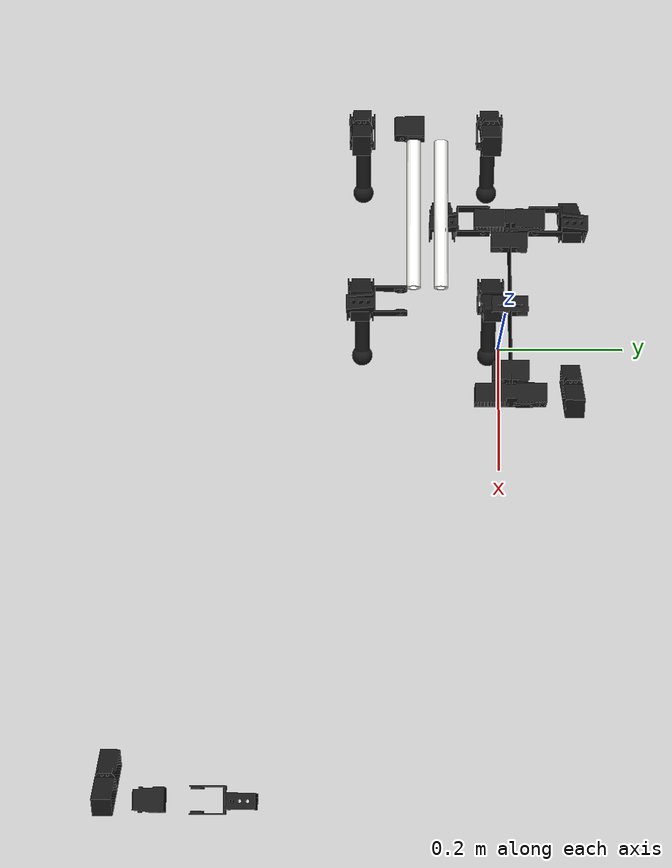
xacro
<?xml version="1.0" ?>
<robot name="zeta_urdf" xmlns:xacro="http://www.ros.org/wiki/xacro">

<xacro:include filename="$(find zeta_urdf_description)/urdf/materials.xacro" />
<xacro:include filename="$(find zeta_urdf_description)/urdf/zeta_urdf.trans" />
<xacro:include filename="$(find zeta_urdf_description)/urdf/zeta_urdf.gazebo" />
<link name="base_link">
  <inertial>
    <origin xyz="0.5865154177311522 -0.47938007450948616 0.24225184206557204" rpy="0 0 0"/>
    <mass value="0.13102657430451126"/>
    <inertia ixx="7e-05" iyy="0.001452" izz="0.001484" ixy="0.0" iyz="-0.0" ixz="-0.0"/>
  </inertial>
  <visual>
    <origin xyz="0 0 0" rpy="0 0 0"/>
    <geometry>
      <mesh filename="package://zeta_urdf_description/meshes/base_link.stl" scale="0.001 0.001 0.001"/>
    </geometry>
    <material name="opaque252525"/>
  </visual>
  <collision>
    <origin xyz="0 0 0" rpy="0 0 0"/>
    <geometry>
      <mesh filename="package://zeta_urdf_description/meshes/base_link.stl" scale="0.001 0.001 0.001"/>
    </geometry>
  </collision>
</link>

<link name="FL_Foot_1">
  <inertial>
    <origin xyz="0.05644893372034021 -0.015447107956216288 -0.056449484510780606" rpy="0 0 0"/>
    <mass value="0.050254366164942214"/>
    <inertia ixx="4e-05" iyy="7.1e-05" izz="4e-05" ixy="0.0" iyz="-0.0" ixz="3.4e-05"/>
  </inertial>
  <visual>
    <origin xyz="-0.667176 0.364961 -0.136492" rpy="0 0 0"/>
    <geometry>
      <mesh filename="package://zeta_urdf_description/meshes/FL_Foot_1.stl" scale="0.001 0.001 0.001"/>
    </geometry>
    <material name="opaque252525"/>
  </visual>
  <collision>
    <origin xyz="-0.667176 0.364961 -0.136492" rpy="0 0 0"/>
    <geometry>
      <mesh filename="package://zeta_urdf_description/meshes/FL_Foot_1.stl" scale="0.001 0.001 0.001"/>
    </geometry>
  </collision>
</link>

<link name="FL_Dual_Motor_Mount_1">
  <inertial>
    <origin xyz="-0.01785632295995343 -1.2666584658926894e-07 -0.01785880452042632" rpy="0 0 0"/>
    <mass value="0.023417593270727483"/>
    <inertia ixx="1.4e-05" iyy="2.5e-05" izz="1.4e-05" ixy="0.0" iyz="0.0" ixz="-8e-06"/>
  </inertial>
  <visual>
    <origin xyz="-0.71243 0.379461 -0.181747" rpy="0 0 0"/>
    <geometry>
      <mesh filename="package://zeta_urdf_description/meshes/FL_Dual_Motor_Mount_1.stl" scale="0.001 0.001 0.001"/>
    </geometry>
    <material name="opaque252525"/>
  </visual>
  <collision>
    <origin xyz="-0.71243 0.379461 -0.181747" rpy="0 0 0"/>
    <geometry>
      <mesh filename="package://zeta_urdf_description/meshes/FL_Dual_Motor_Mount_1.stl" scale="0.001 0.001 0.001"/>
    </geometry>
  </collision>
</link>

<link name="FL_Top_Bracket_1">
  <inertial>
    <origin xyz="0.015262969658813352 0.04757071394376694 -0.011363759328014672" rpy="0 0 0"/>
    <mass value="0.026371988478740775"/>
    <inertia ixx="2.3e-05" iyy="1.1e-05" izz="1.8e-05" ixy="-0.0" iyz="4e-06" ixz="0.0"/>
  </inertial>
  <visual>
    <origin xyz="-0.705973 0.43968 -0.242258" rpy="0 0 0"/>
    <geometry>
      <mesh filename="package://zeta_urdf_description/meshes/FL_Top_Bracket_1.stl" scale="0.001 0.001 0.001"/>
    </geometry>
    <material name="opaque252525"/>
  </visual>
  <collision>
    <origin xyz="-0.705973 0.43968 -0.242258" rpy="0 0 0"/>
    <geometry>
      <mesh filename="package://zeta_urdf_description/meshes/FL_Top_Bracket_1.stl" scale="0.001 0.001 0.001"/>
    </geometry>
  </collision>
</link>

<link name="FR_Top_Bracket_1">
  <inertial>
    <origin xyz="0.015262969658811354 -0.04757086296280377 -0.011363759328016143" rpy="0 0 0"/>
    <mass value="0.02637198847874129"/>
    <inertia ixx="2.3e-05" iyy="1.1e-05" izz="1.8e-05" ixy="0.0" iyz="-4e-06" ixz="0.0"/>
  </inertial>
  <visual>
    <origin xyz="-0.705973 0.51908 -0.242258" rpy="0 0 0"/>
    <geometry>
      <mesh filename="package://zeta_urdf_description/meshes/FR_Top_Bracket_1.stl" scale="0.001 0.001 0.001"/>
    </geometry>
    <material name="opaque252525"/>
  </visual>
  <collision>
    <origin xyz="-0.705973 0.51908 -0.242258" rpy="0 0 0"/>
    <geometry>
      <mesh filename="package://zeta_urdf_description/meshes/FR_Top_Bracket_1.stl" scale="0.001 0.001 0.001"/>
    </geometry>
  </collision>
</link>

<link name="FR_3_Motor_1">
  <inertial>
    <origin xyz="0.00023268298076450922 0.00388108799207032 -4.069288939978488e-07" rpy="0 0 0"/>
    <mass value="0.09250068837166636"/>
    <inertia ixx="2e-05" iyy="1.2e-05" izz="2.3e-05" ixy="0.0" iyz="-0.0" ixz="-0.0"/>
  </inertial>
  <visual>
    <origin xyz="-0.720473 0.50958 -0.242258" rpy="0 0 0"/>
    <geometry>
      <mesh filename="package://zeta_urdf_description/meshes/FR_3_Motor_1.stl" scale="0.001 0.001 0.001"/>
    </geometry>
    <material name="opaque252525"/>
  </visual>
  <collision>
    <origin xyz="-0.720473 0.50958 -0.242258" rpy="0 0 0"/>
    <geometry>
      <mesh filename="package://zeta_urdf_description/meshes/FR_3_Motor_1.stl" scale="0.001 0.001 0.001"/>
    </geometry>
  </collision>
</link>

<link name="Pipe_R_1">
  <inertial>
    <origin xyz="0.1149248413410463 -0.0001969694373666897 1.862640597316556e-10" rpy="0 0 0"/>
    <mass value="0.060722328485887364"/>
    <inertia ixx="5e-06" iyy="0.00027" izz="0.00027" ixy="0.0" iyz="0.0" ixz="0.0"/>
  </inertial>
  <visual>
    <origin xyz="-0.469873 0.499765 -0.242258" rpy="0 0 0"/>
    <geometry>
      <mesh filename="package://zeta_urdf_description/meshes/Pipe_R_1.stl" scale="0.001 0.001 0.001"/>
    </geometry>
    <material name="opaque246246243"/>
  </visual>
  <collision>
    <origin xyz="-0.469873 0.499765 -0.242258" rpy="0 0 0"/>
    <geometry>
      <mesh filename="package://zeta_urdf_description/meshes/Pipe_R_1.stl" scale="0.001 0.001 0.001"/>
    </geometry>
  </collision>
</link>

<link name="Pipe_L_1">
  <inertial>
    <origin xyz="0.11492484134104641 0.0001968204183980804 1.8626425402068492e-10" rpy="0 0 0"/>
    <mass value="0.06072232848588741"/>
    <inertia ixx="5e-06" iyy="0.00027" izz="0.00027" ixy="0.0" iyz="0.0" ixz="-0.0"/>
  </inertial>
  <visual>
    <origin xyz="-0.469873 0.458995 -0.242258" rpy="0 0 0"/>
    <geometry>
      <mesh filename="package://zeta_urdf_description/meshes/Pipe_L_1.stl" scale="0.001 0.001 0.001"/>
    </geometry>
    <material name="opaque246246243"/>
  </visual>
  <collision>
    <origin xyz="-0.469873 0.458995 -0.242258" rpy="0 0 0"/>
    <geometry>
      <mesh filename="package://zeta_urdf_description/meshes/Pipe_L_1.stl" scale="0.001 0.001 0.001"/>
    </geometry>
  </collision>
</link>

<link name="BR_3_Motor_1">
  <inertial>
    <origin xyz="0.00023268298107181895 0.0038810879920733177 -4.0692889261007004e-07" rpy="0 0 0"/>
    <mass value="0.09250068837166658"/>
    <inertia ixx="2e-05" iyy="1.2e-05" izz="2.3e-05" ixy="0.0" iyz="-0.0" ixz="-0.0"/>
  </inertial>
  <visual>
    <origin xyz="-0.449473 0.50958 -0.242258" rpy="0 0 0"/>
    <geometry>
      <mesh filename="package://zeta_urdf_description/meshes/BR_3_Motor_1.stl" scale="0.001 0.001 0.001"/>
    </geometry>
    <material name="opaque252525"/>
  </visual>
  <collision>
    <origin xyz="-0.449473 0.50958 -0.242258" rpy="0 0 0"/>
    <geometry>
      <mesh filename="package://zeta_urdf_description/meshes/BR_3_Motor_1.stl" scale="0.001 0.001 0.001"/>
    </geometry>
  </collision>
</link>

<link name="BL_3_Motor_1">
  <inertial>
    <origin xyz="0.00023268298107342877 -0.0038812370107781935 -4.0692889305415925e-07" rpy="0 0 0"/>
    <mass value="0.0925006883716665"/>
    <inertia ixx="2e-05" iyy="1.2e-05" izz="2.3e-05" ixy="-0.0" iyz="0.0" ixz="-0.0"/>
  </inertial>
  <visual>
    <origin xyz="-0.449473 0.44918 -0.242258" rpy="0 0 0"/>
    <geometry>
      <mesh filename="package://zeta_urdf_description/meshes/BL_3_Motor_1.stl" scale="0.001 0.001 0.001"/>
    </geometry>
    <material name="opaque252525"/>
  </visual>
  <collision>
    <origin xyz="-0.449473 0.44918 -0.242258" rpy="0 0 0"/>
    <geometry>
      <mesh filename="package://zeta_urdf_description/meshes/BL_3_Motor_1.stl" scale="0.001 0.001 0.001"/>
    </geometry>
  </collision>
</link>

<link name="BR_Top_Bracket_1">
  <inertial>
    <origin xyz="0.015262969658733805 -0.047570862962798444 -0.011363759328014672" rpy="0 0 0"/>
    <mass value="0.026371988478740113"/>
    <inertia ixx="2.3e-05" iyy="1.1e-05" izz="1.8e-05" ixy="0.0" iyz="-4e-06" ixz="0.0"/>
  </inertial>
  <visual>
    <origin xyz="-0.434973 0.51908 -0.242258" rpy="0 0 0"/>
    <geometry>
      <mesh filename="package://zeta_urdf_description/meshes/BR_Top_Bracket_1.stl" scale="0.001 0.001 0.001"/>
    </geometry>
    <material name="opaque252525"/>
  </visual>
  <collision>
    <origin xyz="-0.434973 0.51908 -0.242258" rpy="0 0 0"/>
    <geometry>
      <mesh filename="package://zeta_urdf_description/meshes/BR_Top_Bracket_1.stl" scale="0.001 0.001 0.001"/>
    </geometry>
  </collision>
</link>

<link name="BL_Dual_Motor_Mount_1">
  <inertial>
    <origin xyz="-0.018030769834741278 -1.2666584398024483e-07 -0.01803155880432636" rpy="0 0 0"/>
    <mass value="0.02330043804692393"/>
    <inertia ixx="1.4e-05" iyy="2.5e-05" izz="1.4e-05" ixy="0.0" iyz="0.0" ixz="-8e-06"/>
  </inertial>
  <visual>
    <origin xyz="-0.44143 0.379461 -0.181747" rpy="0 0 0"/>
    <geometry>
      <mesh filename="package://zeta_urdf_description/meshes/BL_Dual_Motor_Mount_1.stl" scale="0.001 0.001 0.001"/>
    </geometry>
    <material name="opaque252525"/>
  </visual>
  <collision>
    <origin xyz="-0.44143 0.379461 -0.181747" rpy="0 0 0"/>
    <geometry>
      <mesh filename="package://zeta_urdf_description/meshes/BL_Dual_Motor_Mount_1.stl" scale="0.001 0.001 0.001"/>
    </geometry>
  </collision>
</link>

<link name="BL_Top_Bracket_1">
  <inertial>
    <origin xyz="0.015262969658734526 0.047570713943769716 -0.01136375932801384" rpy="0 0 0"/>
    <mass value="0.02637198847874093"/>
    <inertia ixx="2.3e-05" iyy="1.1e-05" izz="1.8e-05" ixy="-0.0" iyz="4e-06" ixz="0.0"/>
  </inertial>
  <visual>
    <origin xyz="-0.434973 0.43968 -0.242258" rpy="0 0 0"/>
    <geometry>
      <mesh filename="package://zeta_urdf_description/meshes/BL_Top_Bracket_1.stl" scale="0.001 0.001 0.001"/>
    </geometry>
    <material name="opaque252525"/>
  </visual>
  <collision>
    <origin xyz="-0.434973 0.43968 -0.242258" rpy="0 0 0"/>
    <geometry>
      <mesh filename="package://zeta_urdf_description/meshes/BL_Top_Bracket_1.stl" scale="0.001 0.001 0.001"/>
    </geometry>
  </collision>
</link>

<link name="FL_2_Motor_1">
  <inertial>
    <origin xyz="-0.009461781630211052 -0.015482968305636502 -0.009462146346697065" rpy="0 0 0"/>
    <mass value="0.09250068837133453"/>
    <inertia ixx="1.8e-05" iyy="2e-05" izz="1.8e-05" ixy="0.0" iyz="0.0" ixz="-5e-06"/>
  </inertial>
  <visual>
    <origin xyz="-0.721623 0.364211 -0.190939" rpy="0 0 0"/>
    <geometry>
      <mesh filename="package://zeta_urdf_description/meshes/FL_2_Motor_1.stl" scale="0.001 0.001 0.001"/>
    </geometry>
    <material name="opaque252525"/>
  </visual>
  <collision>
    <origin xyz="-0.721623 0.364211 -0.190939" rpy="0 0 0"/>
    <geometry>
      <mesh filename="package://zeta_urdf_description/meshes/FL_2_Motor_1.stl" scale="0.001 0.001 0.001"/>
    </geometry>
  </collision>
</link>

<link name="FL_1_Motor_1">
  <inertial>
    <origin xyz="0.0027442419607356383 -0.00023296830563640514 0.00274502873903551" rpy="0 0 0"/>
    <mass value="0.09250068837133453"/>
    <inertia ixx="1.8e-05" iyy="2e-05" izz="1.8e-05" ixy="-0.0" iyz="-0.0" ixz="-5e-06"/>
  </inertial>
  <visual>
    <origin xyz="-0.673893 0.379461 -0.143209" rpy="0 0 0"/>
    <geometry>
      <mesh filename="package://zeta_urdf_description/meshes/FL_1_Motor_1.stl" scale="0.001 0.001 0.001"/>
    </geometry>
    <material name="opaque252525"/>
  </visual>
  <collision>
    <origin xyz="-0.673893 0.379461 -0.143209" rpy="0 0 0"/>
    <geometry>
      <mesh filename="package://zeta_urdf_description/meshes/FL_1_Motor_1.stl" scale="0.001 0.001 0.001"/>
    </geometry>
  </collision>
</link>

<link name="FL_3_Motor_1">
  <inertial>
    <origin xyz="0.00023268298076506433 -0.0038812370107810246 -4.0692889374804864e-07" rpy="0 0 0"/>
    <mass value="0.09250068837166625"/>
    <inertia ixx="2e-05" iyy="1.2e-05" izz="2.3e-05" ixy="-0.0" iyz="0.0" ixz="-0.0"/>
  </inertial>
  <visual>
    <origin xyz="-0.720473 0.44918 -0.242258" rpy="0 0 0"/>
    <geometry>
      <mesh filename="package://zeta_urdf_description/meshes/FL_3_Motor_1.stl" scale="0.001 0.001 0.001"/>
    </geometry>
    <material name="opaque252525"/>
  </visual>
  <collision>
    <origin xyz="-0.720473 0.44918 -0.242258" rpy="0 0 0"/>
    <geometry>
      <mesh filename="package://zeta_urdf_description/meshes/FL_3_Motor_1.stl" scale="0.001 0.001 0.001"/>
    </geometry>
  </collision>
</link>

<link name="BL_2_Motor_1">
  <inertial>
    <origin xyz="-0.009461781631035449 -0.015482968305633948 -0.00946214634669601" rpy="0 0 0"/>
    <mass value="0.09250068837133454"/>
    <inertia ixx="1.8e-05" iyy="2e-05" izz="1.8e-05" ixy="0.0" iyz="0.0" ixz="-5e-06"/>
  </inertial>
  <visual>
    <origin xyz="-0.450623 0.364211 -0.190939" rpy="0 0 0"/>
    <geometry>
      <mesh filename="package://zeta_urdf_description/meshes/BL_2_Motor_1.stl" scale="0.001 0.001 0.001"/>
    </geometry>
    <material name="opaque252525"/>
  </visual>
  <collision>
    <origin xyz="-0.450623 0.364211 -0.190939" rpy="0 0 0"/>
    <geometry>
      <mesh filename="package://zeta_urdf_description/meshes/BL_2_Motor_1.stl" scale="0.001 0.001 0.001"/>
    </geometry>
  </collision>
</link>

<link name="FR_Foot_1">
  <inertial>
    <origin xyz="0.056448933720338434 0.015446958937245348 -0.056449484510780606" rpy="0 0 0"/>
    <mass value="0.05025436616494203"/>
    <inertia ixx="4e-05" iyy="7.1e-05" izz="4e-05" ixy="-0.0" iyz="0.0" ixz="3.4e-05"/>
  </inertial>
  <visual>
    <origin xyz="-0.667176 0.593799 -0.136492" rpy="0 0 0"/>
    <geometry>
      <mesh filename="package://zeta_urdf_description/meshes/FR_Foot_1.stl" scale="0.001 0.001 0.001"/>
    </geometry>
    <material name="opaque252525"/>
  </visual>
  <collision>
    <origin xyz="-0.667176 0.593799 -0.136492" rpy="0 0 0"/>
    <geometry>
      <mesh filename="package://zeta_urdf_description/meshes/FR_Foot_1.stl" scale="0.001 0.001 0.001"/>
    </geometry>
  </collision>
</link>

<link name="BL_Foot_1">
  <inertial>
    <origin xyz="0.05644893372033977 -0.015447107956213624 -0.05644948451077919" rpy="0 0 0"/>
    <mass value="0.05025436616494222"/>
    <inertia ixx="4e-05" iyy="7.1e-05" izz="4e-05" ixy="0.0" iyz="-0.0" ixz="3.4e-05"/>
  </inertial>
  <visual>
    <origin xyz="-0.396176 0.364961 -0.136492" rpy="0 0 0"/>
    <geometry>
      <mesh filename="package://zeta_urdf_description/meshes/BL_Foot_1.stl" scale="0.001 0.001 0.001"/>
    </geometry>
    <material name="opaque252525"/>
  </visual>
  <collision>
    <origin xyz="-0.396176 0.364961 -0.136492" rpy="0 0 0"/>
    <geometry>
      <mesh filename="package://zeta_urdf_description/meshes/BL_Foot_1.stl" scale="0.001 0.001 0.001"/>
    </geometry>
  </collision>
</link>

<link name="FR_1_Motor_1">
  <inertial>
    <origin xyz="0.0027442419608072477 0.0002328192868662482 0.0027450287384346295" rpy="0 0 0"/>
    <mass value="0.09250068837172258"/>
    <inertia ixx="1.8e-05" iyy="2e-05" izz="1.8e-05" ixy="0.0" iyz="0.0" ixz="-5e-06"/>
  </inertial>
  <visual>
    <origin xyz="-0.673893 0.579299 -0.143209" rpy="0 0 0"/>
    <geometry>
      <mesh filename="package://zeta_urdf_description/meshes/FR_1_Motor_1.stl" scale="0.001 0.001 0.001"/>
    </geometry>
    <material name="opaque252525"/>
  </visual>
  <collision>
    <origin xyz="-0.673893 0.579299 -0.143209" rpy="0 0 0"/>
    <geometry>
      <mesh filename="package://zeta_urdf_description/meshes/FR_1_Motor_1.stl" scale="0.001 0.001 0.001"/>
    </geometry>
  </collision>
</link>

<link name="BR_Foot_1">
  <inertial>
    <origin xyz="0.0564489337203386 0.015446958937248012 -0.056449484510775555" rpy="0 0 0"/>
    <mass value="0.05025436616494205"/>
    <inertia ixx="4e-05" iyy="7.1e-05" izz="4e-05" ixy="-0.0" iyz="0.0" ixz="3.4e-05"/>
  </inertial>
  <visual>
    <origin xyz="-0.396176 0.593799 -0.136492" rpy="0 0 0"/>
    <geometry>
      <mesh filename="package://zeta_urdf_description/meshes/BR_Foot_1.stl" scale="0.001 0.001 0.001"/>
    </geometry>
    <material name="opaque252525"/>
  </visual>
  <collision>
    <origin xyz="-0.396176 0.593799 -0.136492" rpy="0 0 0"/>
    <geometry>
      <mesh filename="package://zeta_urdf_description/meshes/BR_Foot_1.stl" scale="0.001 0.001 0.001"/>
    </geometry>
  </collision>
</link>

<link name="BL_1_Motor_1">
  <inertial>
    <origin xyz="0.002744241959910687 -0.0002329683056337406 0.0027450287390365924" rpy="0 0 0"/>
    <mass value="0.09250068837133459"/>
    <inertia ixx="1.8e-05" iyy="2e-05" izz="1.8e-05" ixy="-0.0" iyz="-0.0" ixz="-5e-06"/>
  </inertial>
  <visual>
    <origin xyz="-0.402893 0.379461 -0.143209" rpy="0 0 0"/>
    <geometry>
      <mesh filename="package://zeta_urdf_description/meshes/BL_1_Motor_1.stl" scale="0.001 0.001 0.001"/>
    </geometry>
    <material name="opaque252525"/>
  </visual>
  <collision>
    <origin xyz="-0.402893 0.379461 -0.143209" rpy="0 0 0"/>
    <geometry>
      <mesh filename="package://zeta_urdf_description/meshes/BL_1_Motor_1.stl" scale="0.001 0.001 0.001"/>
    </geometry>
  </collision>
</link>

<link name="FR_Dual_Motor_Mount_1">
  <inertial>
    <origin xyz="-0.017856322959954762 -2.235312746012852e-08 -0.017858804520422294" rpy="0 0 0"/>
    <mass value="0.023417593270725956"/>
    <inertia ixx="1.4e-05" iyy="2.5e-05" izz="1.4e-05" ixy="0.0" iyz="-0.0" ixz="-8e-06"/>
  </inertial>
  <visual>
    <origin xyz="-0.71243 0.579299 -0.181747" rpy="0 0 0"/>
    <geometry>
      <mesh filename="package://zeta_urdf_description/meshes/FR_Dual_Motor_Mount_1.stl" scale="0.001 0.001 0.001"/>
    </geometry>
    <material name="opaque252525"/>
  </visual>
  <collision>
    <origin xyz="-0.71243 0.579299 -0.181747" rpy="0 0 0"/>
    <geometry>
      <mesh filename="package://zeta_urdf_description/meshes/FR_Dual_Motor_Mount_1.stl" scale="0.001 0.001 0.001"/>
    </geometry>
  </collision>
</link>

<link name="FR_2_Motor_1">
  <inertial>
    <origin xyz="-0.009461781630290433 0.015482819286866012 -0.009462146347450323" rpy="0 0 0"/>
    <mass value="0.09250068837172218"/>
    <inertia ixx="1.8e-05" iyy="2e-05" izz="1.8e-05" ixy="-0.0" iyz="-0.0" ixz="-5e-06"/>
  </inertial>
  <visual>
    <origin xyz="-0.721623 0.594549 -0.190939" rpy="0 0 0"/>
    <geometry>
      <mesh filename="package://zeta_urdf_description/meshes/FR_2_Motor_1.stl" scale="0.001 0.001 0.001"/>
    </geometry>
    <material name="opaque252525"/>
  </visual>
  <collision>
    <origin xyz="-0.721623 0.594549 -0.190939" rpy="0 0 0"/>
    <geometry>
      <mesh filename="package://zeta_urdf_description/meshes/FR_2_Motor_1.stl" scale="0.001 0.001 0.001"/>
    </geometry>
  </collision>
</link>

<link name="BR_1_Motor_1">
  <inertial>
    <origin xyz="0.0027442419611180546 0.0002328192868688017 0.002745028738439542" rpy="0 0 0"/>
    <mass value="0.09250068837172253"/>
    <inertia ixx="1.8e-05" iyy="2e-05" izz="1.8e-05" ixy="0.0" iyz="0.0" ixz="-5e-06"/>
  </inertial>
  <visual>
    <origin xyz="-0.402893 0.579299 -0.143209" rpy="0 0 0"/>
    <geometry>
      <mesh filename="package://zeta_urdf_description/meshes/BR_1_Motor_1.stl" scale="0.001 0.001 0.001"/>
    </geometry>
    <material name="opaque252525"/>
  </visual>
  <collision>
    <origin xyz="-0.402893 0.579299 -0.143209" rpy="0 0 0"/>
    <geometry>
      <mesh filename="package://zeta_urdf_description/meshes/BR_1_Motor_1.stl" scale="0.001 0.001 0.001"/>
    </geometry>
  </collision>
</link>

<link name="BR_Dual_Motor_Mount_1">
  <inertial>
    <origin xyz="-0.01803076983473978 -2.235312068776807e-08 -0.01803155880432622" rpy="0 0 0"/>
    <mass value="0.02330043804691809"/>
    <inertia ixx="1.4e-05" iyy="2.5e-05" izz="1.4e-05" ixy="-0.0" iyz="0.0" ixz="-8e-06"/>
  </inertial>
  <visual>
    <origin xyz="-0.44143 0.579299 -0.181747" rpy="0 0 0"/>
    <geometry>
      <mesh filename="package://zeta_urdf_description/meshes/BR_Dual_Motor_Mount_1.stl" scale="0.001 0.001 0.001"/>
    </geometry>
    <material name="opaque252525"/>
  </visual>
  <collision>
    <origin xyz="-0.44143 0.579299 -0.181747" rpy="0 0 0"/>
    <geometry>
      <mesh filename="package://zeta_urdf_description/meshes/BR_Dual_Motor_Mount_1.stl" scale="0.001 0.001 0.001"/>
    </geometry>
  </collision>
</link>

<link name="BR_2_Motor_1">
  <inertial>
    <origin xyz="-0.009461781629981347 0.0154828192868679 -0.00946214634744924" rpy="0 0 0"/>
    <mass value="0.09250068837172205"/>
    <inertia ixx="1.8e-05" iyy="2e-05" izz="1.8e-05" ixy="-0.0" iyz="-0.0" ixz="-5e-06"/>
  </inertial>
  <visual>
    <origin xyz="-0.450623 0.594549 -0.190939" rpy="0 0 0"/>
    <geometry>
      <mesh filename="package://zeta_urdf_description/meshes/BR_2_Motor_1.stl" scale="0.001 0.001 0.001"/>
    </geometry>
    <material name="opaque252525"/>
  </visual>
  <collision>
    <origin xyz="-0.450623 0.594549 -0.190939" rpy="0 0 0"/>
    <geometry>
      <mesh filename="package://zeta_urdf_description/meshes/BR_2_Motor_1.stl" scale="0.001 0.001 0.001"/>
    </geometry>
  </collision>
</link>

<joint name="FL_1" type="continuous">
  <origin xyz="-0.006717 0.0145 -0.006717" rpy="0 0 0"/>
  <parent link="FL_1_Motor_1"/>
  <child link="FL_Foot_1"/>
  <axis xyz="-0.0 -1.0 -0.0"/>
</joint>

<joint name="FL_M_2" type="fixed">
  <origin xyz="-0.009193 -0.01525 -0.009192" rpy="0 0 0"/>
  <parent link="FL_2_Motor_1"/>
  <child link="FL_Dual_Motor_Mount_1"/>
</joint>

<joint name="FL_3" type="continuous">
  <origin xyz="-0.0145 0.0095 0.0" rpy="0 0 0"/>
  <parent link="FL_3_Motor_1"/>
  <child link="FL_Top_Bracket_1"/>
  <axis xyz="1.0 -0.0 -0.0"/>
</joint>

<joint name="FR_3" type="continuous">
  <origin xyz="-0.0145 -0.0095 0.0" rpy="0 0 0"/>
  <parent link="FR_3_Motor_1"/>
  <child link="FR_Top_Bracket_1"/>
  <axis xyz="-1.0 0.0 0.0"/>
</joint>

<joint name="FR_M_3" type="fixed">
  <origin xyz="0.720473 -0.50958 0.242258" rpy="0 0 0"/>
  <parent link="base_link"/>
  <child link="FR_3_Motor_1"/>
</joint>

<joint name="R_Pipe" type="fixed">
  <origin xyz="0.469873 -0.499765 0.242258" rpy="0 0 0"/>
  <parent link="base_link"/>
  <child link="Pipe_R_1"/>
</joint>

<joint name="L_Pipe" type="fixed">
  <origin xyz="0.469873 -0.458995 0.242258" rpy="0 0 0"/>
  <parent link="base_link"/>
  <child link="Pipe_L_1"/>
</joint>

<joint name="BR_M_3" type="fixed">
  <origin xyz="0.449473 -0.50958 0.242258" rpy="0 0 0"/>
  <parent link="base_link"/>
  <child link="BR_3_Motor_1"/>
</joint>

<joint name="BL_M_3" type="fixed">
  <origin xyz="0.449473 -0.44918 0.242258" rpy="0 0 0"/>
  <parent link="base_link"/>
  <child link="BL_3_Motor_1"/>
</joint>

<joint name="BR_3" type="continuous">
  <origin xyz="-0.0145 -0.0095 0.0" rpy="0 0 0"/>
  <parent link="BR_3_Motor_1"/>
  <child link="BR_Top_Bracket_1"/>
  <axis xyz="-1.0 0.0 0.0"/>
</joint>

<joint name="BL_M_2" type="fixed">
  <origin xyz="-0.009193 -0.01525 -0.009192" rpy="0 0 0"/>
  <parent link="BL_2_Motor_1"/>
  <child link="BL_Dual_Motor_Mount_1"/>
</joint>

<joint name="BL_3" type="continuous">
  <origin xyz="-0.0145 0.0095 0.0" rpy="0 0 0"/>
  <parent link="BL_3_Motor_1"/>
  <child link="BL_Top_Bracket_1"/>
  <axis xyz="1.0 -0.0 -0.0"/>
</joint>

<joint name="FL_2" type="continuous">
  <origin xyz="0.01565 0.075469 -0.051319" rpy="0 0 0"/>
  <parent link="FL_Top_Bracket_1"/>
  <child link="FL_2_Motor_1"/>
  <axis xyz="0.0 -1.0 0.0"/>
</joint>

<joint name="FL_M_1" type="fixed">
  <origin xyz="-0.038537 0.0 -0.038538" rpy="0 0 0"/>
  <parent link="FL_Dual_Motor_Mount_1"/>
  <child link="FL_1_Motor_1"/>
</joint>

<joint name="FL_M_3" type="fixed">
  <origin xyz="0.720473 -0.44918 0.242258" rpy="0 0 0"/>
  <parent link="base_link"/>
  <child link="FL_3_Motor_1"/>
</joint>

<joint name="BL_2" type="continuous">
  <origin xyz="0.01565 0.075469 -0.051319" rpy="0 0 0"/>
  <parent link="BL_Top_Bracket_1"/>
  <child link="BL_2_Motor_1"/>
  <axis xyz="-0.0 -1.0 -0.0"/>
</joint>

<joint name="FR_1" type="continuous">
  <origin xyz="-0.006717 -0.0145 -0.006717" rpy="0 0 0"/>
  <parent link="FR_1_Motor_1"/>
  <child link="FR_Foot_1"/>
  <axis xyz="-0.0 -1.0 0.0"/>
</joint>

<joint name="BL_1" type="continuous">
  <origin xyz="-0.006717 0.0145 -0.006717" rpy="0 0 0"/>
  <parent link="BL_1_Motor_1"/>
  <child link="BL_Foot_1"/>
  <axis xyz="-0.0 -1.0 -0.0"/>
</joint>

<joint name="FR_M_1" type="fixed">
  <origin xyz="-0.038537 0.0 -0.038538" rpy="0 0 0"/>
  <parent link="FR_Dual_Motor_Mount_1"/>
  <child link="FR_1_Motor_1"/>
</joint>

<joint name="BR_1" type="continuous">
  <origin xyz="-0.006717 -0.0145 -0.006717" rpy="0 0 0"/>
  <parent link="BR_1_Motor_1"/>
  <child link="BR_Foot_1"/>
  <axis xyz="-0.0 -1.0 0.0"/>
</joint>

<joint name="BL_M_1" type="fixed">
  <origin xyz="-0.038537 0.0 -0.038538" rpy="0 0 0"/>
  <parent link="BL_Dual_Motor_Mount_1"/>
  <child link="BL_1_Motor_1"/>
</joint>

<joint name="FR_M_2" type="fixed">
  <origin xyz="-0.009193 0.01525 -0.009192" rpy="0 0 0"/>
  <parent link="FR_2_Motor_1"/>
  <child link="FR_Dual_Motor_Mount_1"/>
</joint>

<joint name="FR_2" type="continuous">
  <origin xyz="0.01565 -0.075469 -0.051319" rpy="0 0 0"/>
  <parent link="FR_Top_Bracket_1"/>
  <child link="FR_2_Motor_1"/>
  <axis xyz="-0.0 -1.0 0.0"/>
</joint>

<joint name="BR_M_1" type="fixed">
  <origin xyz="-0.038537 0.0 -0.038538" rpy="0 0 0"/>
  <parent link="BR_Dual_Motor_Mount_1"/>
  <child link="BR_1_Motor_1"/>
</joint>

<joint name="BR_M_2" type="fixed">
  <origin xyz="-0.009193 0.01525 -0.009192" rpy="0 0 0"/>
  <parent link="BR_2_Motor_1"/>
  <child link="BR_Dual_Motor_Mount_1"/>
</joint>

<joint name="BR_2" type="continuous">
  <origin xyz="0.01565 -0.075469 -0.051319" rpy="0 0 0"/>
  <parent link="BR_Top_Bracket_1"/>
  <child link="BR_2_Motor_1"/>
  <axis xyz="-0.0 -1.0 0.0"/>
</joint>

</robot>

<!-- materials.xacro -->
<robot name="zeta_urdf" xmlns:xacro="http://www.ros.org/wiki/xacro" >

<material name="silver_default">
  <color rgba="0.700 0.700 0.700 1.000"/>
</material>
<material name="opaque252525">
  <color rgba="0.09803921568627451 0.09803921568627451 0.09803921568627451 1.0"/>
</material>
<material name="opaque246246243">
  <color rgba="0.9647058823529412 0.9647058823529412 0.9529411764705882 1.0"/>
</material>
<material name="plastic_textured_regular">
  <color rgba="0.09803921568627451 0.09803921568627451 0.09803921568627451 1.0"/>
</material>
<material name="plastic_matte_black">
  <color rgba="0.09803921568627451 0.09803921568627451 0.09803921568627451 1.0"/>
</material>
<material name="opaque202209238">
  <color rgba="0.792156862745098 0.8196078431372549 0.9333333333333333 1.0"/>
</material>
<material name="fr4">
  <color rgba="0.26666666666666666 0.4666666666666667 0.4 1.0"/>
</material>

</robot>

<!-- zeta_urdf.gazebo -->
<robot name="zeta_urdf" xmlns:xacro="http://www.ros.org/wiki/xacro" >

<xacro:property name="body_color" value="Gazebo/Silver" />

<gazebo>
  <plugin name="gazebo_ros_control" filename="libgazebo_ros_control.so">
    <robotNamespace>/zeta_urdf</robotNamespace>
  </plugin>
</gazebo>

<gazebo reference="base_link">
  <material>${body_color}</material>
  <mu1>0.2</mu1>
  <mu2>0.2</mu2>
  <selfCollide>true</selfCollide>
  <gravity>true</gravity>
</gazebo>

<gazebo reference="FL_Foot_1">
  <material>${body_color}</material>
  <mu1>0.2</mu1>
  <mu2>0.2</mu2>
  <selfCollide>true</selfCollide>
</gazebo>

<gazebo reference="FL_Dual_Motor_Mount_1">
  <material>${body_color}</material>
  <mu1>0.2</mu1>
  <mu2>0.2</mu2>
  <selfCollide>true</selfCollide>
</gazebo>

<gazebo reference="FL_Top_Bracket_1">
  <material>${body_color}</material>
  <mu1>0.2</mu1>
  <mu2>0.2</mu2>
  <selfCollide>true</selfCollide>
</gazebo>

<gazebo reference="FR_Top_Bracket_1">
  <material>${body_color}</material>
  <mu1>0.2</mu1>
  <mu2>0.2</mu2>
  <selfCollide>true</selfCollide>
</gazebo>

<gazebo reference="FR_3_Motor_1">
  <material>${body_color}</material>
  <mu1>0.2</mu1>
  <mu2>0.2</mu2>
  <selfCollide>true</selfCollide>
</gazebo>

<gazebo reference="Pipe_R_1">
  <material>${body_color}</material>
  <mu1>0.2</mu1>
  <mu2>0.2</mu2>
  <selfCollide>true</selfCollide>
</gazebo>

<gazebo reference="Pipe_L_1">
  <material>${body_color}</material>
  <mu1>0.2</mu1>
  <mu2>0.2</mu2>
  <selfCollide>true</selfCollide>
</gazebo>

<gazebo reference="BR_3_Motor_1">
  <material>${body_color}</material>
  <mu1>0.2</mu1>
  <mu2>0.2</mu2>
  <selfCollide>true</selfCollide>
</gazebo>

<gazebo reference="BL_3_Motor_1">
  <material>${body_color}</material>
  <mu1>0.2</mu1>
  <mu2>0.2</mu2>
  <selfCollide>true</selfCollide>
</gazebo>

<gazebo reference="BR_Top_Bracket_1">
  <material>${body_color}</material>
  <mu1>0.2</mu1>
  <mu2>0.2</mu2>
  <selfCollide>true</selfCollide>
</gazebo>

<gazebo reference="BL_Dual_Motor_Mount_1">
  <material>${body_color}</material>
  <mu1>0.2</mu1>
  <mu2>0.2</mu2>
  <selfCollide>true</selfCollide>
</gazebo>

<gazebo reference="BL_Top_Bracket_1">
  <material>${body_color}</material>
  <mu1>0.2</mu1>
  <mu2>0.2</mu2>
  <selfCollide>true</selfCollide>
</gazebo>

<gazebo reference="FL_2_Motor_1">
  <material>${body_color}</material>
  <mu1>0.2</mu1>
  <mu2>0.2</mu2>
  <selfCollide>true</selfCollide>
</gazebo>

<gazebo reference="FL_1_Motor_1">
  <material>${body_color}</material>
  <mu1>0.2</mu1>
  <mu2>0.2</mu2>
  <selfCollide>true</selfCollide>
</gazebo>

<gazebo reference="FL_3_Motor_1">
  <material>${body_color}</material>
  <mu1>0.2</mu1>
  <mu2>0.2</mu2>
  <selfCollide>true</selfCollide>
</gazebo>

<gazebo reference="BL_2_Motor_1">
  <material>${body_color}</material>
  <mu1>0.2</mu1>
  <mu2>0.2</mu2>
  <selfCollide>true</selfCollide>
</gazebo>

<gazebo reference="FR_Foot_1">
  <material>${body_color}</material>
  <mu1>0.2</mu1>
  <mu2>0.2</mu2>
  <selfCollide>true</selfCollide>
</gazebo>

<gazebo reference="BL_Foot_1">
  <material>${body_color}</material>
  <mu1>0.2</mu1>
  <mu2>0.2</mu2>
  <selfCollide>true</selfCollide>
</gazebo>

<gazebo reference="FR_1_Motor_1">
  <material>${body_color}</material>
  <mu1>0.2</mu1>
  <mu2>0.2</mu2>
  <selfCollide>true</selfCollide>
</gazebo>

<gazebo reference="BR_Foot_1">
  <material>${body_color}</material>
  <mu1>0.2</mu1>
  <mu2>0.2</mu2>
  <selfCollide>true</selfCollide>
</gazebo>

<gazebo reference="BL_1_Motor_1">
  <material>${body_color}</material>
  <mu1>0.2</mu1>
  <mu2>0.2</mu2>
  <selfCollide>true</selfCollide>
</gazebo>

<gazebo reference="FR_Dual_Motor_Mount_1">
  <material>${body_color}</material>
  <mu1>0.2</mu1>
  <mu2>0.2</mu2>
  <selfCollide>true</selfCollide>
</gazebo>

<gazebo reference="FR_2_Motor_1">
  <material>${body_color}</material>
  <mu1>0.2</mu1>
  <mu2>0.2</mu2>
  <selfCollide>true</selfCollide>
</gazebo>

<gazebo reference="BR_1_Motor_1">
  <material>${body_color}</material>
  <mu1>0.2</mu1>
  <mu2>0.2</mu2>
  <selfCollide>true</selfCollide>
</gazebo>

<gazebo reference="BR_Dual_Motor_Mount_1">
  <material>${body_color}</material>
  <mu1>0.2</mu1>
  <mu2>0.2</mu2>
  <selfCollide>true</selfCollide>
</gazebo>

<gazebo reference="BR_2_Motor_1">
  <material>${body_color}</material>
  <mu1>0.2</mu1>
  <mu2>0.2</mu2>
  <selfCollide>true</selfCollide>
</gazebo>

<gazebo reference="Pi_Mount_v1_1">
  <material>${body_color}</material>
  <mu1>0.2</mu1>
  <mu2>0.2</mu2>
  <selfCollide>true</selfCollide>
</gazebo>

<gazebo reference="Arduino_Mount_v1_1">
  <material>${body_color}</material>
  <mu1>0.2</mu1>
  <mu2>0.2</mu2>
  <selfCollide>true</selfCollide>
</gazebo>

<gazebo reference="rpi3-bottom_netfabb_v2_1">
  <material>${body_color}</material>
  <mu1>0.2</mu1>
  <mu2>0.2</mu2>
  <selfCollide>true</selfCollide>
</gazebo>

<gazebo reference="Raspberry_Pi_3_Light_Version_v1_1">
  <material>${body_color}</material>
  <mu1>0.2</mu1>
  <mu2>0.2</mu2>
  <selfCollide>true</selfCollide>
</gazebo>

<gazebo reference="rpi2-top_30mm-fan_netfabb_v2_1">
  <material>${body_color}</material>
  <mu1>0.2</mu1>
  <mu2>0.2</mu2>
  <selfCollide>true</selfCollide>
</gazebo>

<gazebo reference="ArduinoMega_STEP_AP203_v1_1">
  <material>${body_color}</material>
  <mu1>0.2</mu1>
  <mu2>0.2</mu2>
  <selfCollide>true</selfCollide>
</gazebo>

</robot>
